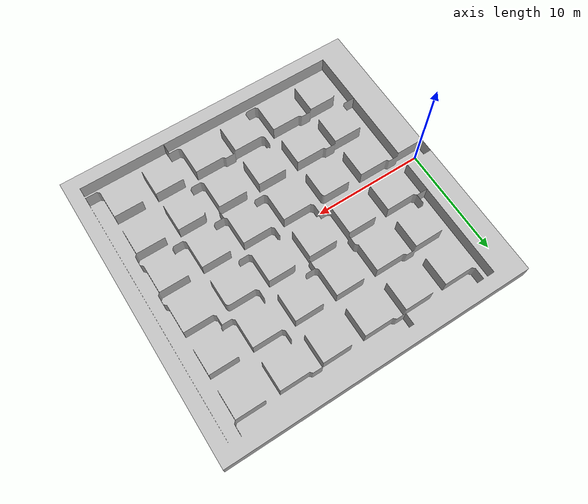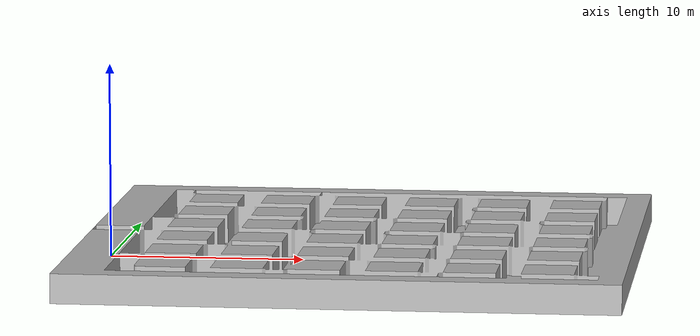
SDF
<sdf version='1.5'>
  <!-- Draw Model -->
  <model name="mazeB">
    <static>true</static>
    <link name="mazeB">
      <collision name="collision">
        <geometry>
          <mesh>
            <uri>model://turtlebot3_maze2/mazeB/mazeB.stl</uri>
          </mesh>
        </geometry>
      </collision>

      <visual name="visual">
        <geometry>
          <mesh>
            <uri>model://turtlebot3_maze2/mazeB/mazeB.dae</uri>
          </mesh>
        </geometry>
      </visual>
    </link>
  </model>
</sdf>
